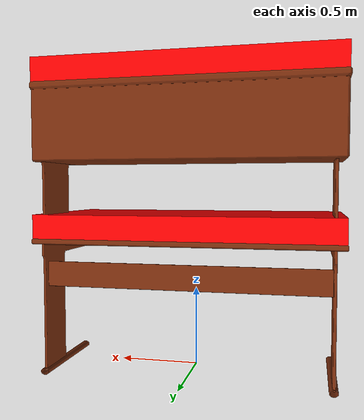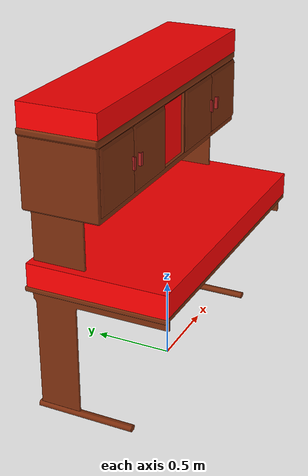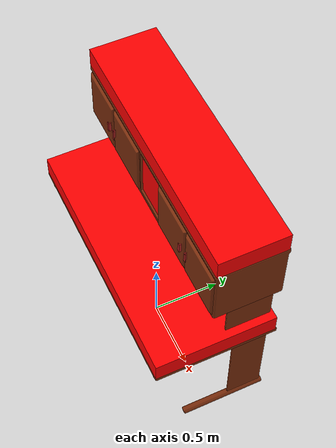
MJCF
<mujoco model="Desk_310_1">
  <compiler angle="radian" boundmass="0.01"/>

  <default>
    <default class="/">
      <default class="__VISUAL_MJT__">
        <geom contype="0" conaffinity="0"/>
      </default>
      <default class="__STRUCTURAL_MJT__">
        <geom contype="8" conaffinity="15" group="4" friction="0.9 0.9 0.001" solref="0.025" solimp="0.998 0.998"/>
      </default>
      <default class="__DYNAMIC_MJT__">
        <geom conaffinity="15" group="4" friction="0.9 0.9 0.001" solref="0.025" solimp="0.998 0.998"/>
      </default>
    </default>
  </default>

  <asset>
    <texture type="2d" name="LightWoodCounters3" file="assets/LightWoodCounters.png"/>
    <texture type="2d" name="HammeredMetal_AlbedoTransparency_2" file="assets/HammeredMetal_AlbedoTransparency.png"/>
    <material name="material_LightWoodCounters4" class="/" texture="LightWoodCounters3" rgba="0.686275 0.34902 0.156863 1" metallic="0" roughness="0.3" colormapwrap="repeat"/>
    <material name="material_LightWoodCounters3" class="/" texture="LightWoodCounters3" rgba="0.686275 0.34902 0.156863 1" metallic="0" roughness="0.3" clearcoat="0.18" clearcoatroughness="0" colormapwrap="repeat"/>
    <material name="material_HammeredMetal_AlbedoTransparency_2" class="/" texture="HammeredMetal_AlbedoTransparency_2" rgba="0.835294 0.807843 0.764706 1" metallic="1" roughness="0.13" colormapwrap="repeat"/>
    <mesh name="Desk_310_1_DeskMesh_0" class="/" content_type="model/obj" file="assets/Desk_310_1_DeskMesh/Desk_310_1_DeskMesh_0.obj"/>
    <mesh name="Desk_310_1_DeskMesh_1" class="/" content_type="model/obj" file="assets/Desk_310_1_DeskMesh/Desk_310_1_DeskMesh_1.obj"/>
    <mesh name="Desk_310_1_CabinetDoorMesh_02" class="/" content_type="model/obj" file="assets/Desk_310_1_CabinetDoorMesh_02/Desk_310_1_CabinetDoorMesh_02.obj"/>
    <mesh name="Desk_310_1_handle_3_76mm_02" class="/" content_type="model/obj" file="assets/Desk_310_1_handle_3_76mm_02/Desk_310_1_handle_3_76mm_02.obj"/>
    <mesh name="Desk_310_1_CabinetDoorMesh_03" class="/" content_type="model/obj" file="assets/Desk_310_1_CabinetDoorMesh_03/Desk_310_1_CabinetDoorMesh_03.obj"/>
    <mesh name="Desk_310_1_handle_3_76mm_03" class="/" content_type="model/obj" file="assets/Desk_310_1_handle_3_76mm_03/Desk_310_1_handle_3_76mm_03.obj"/>
    <mesh name="Desk_310_1_CabinetDoorMesh_01" class="/" content_type="model/obj" file="assets/Desk_310_1_CabinetDoorMesh_01/Desk_310_1_CabinetDoorMesh_01.obj"/>
    <mesh name="Desk_310_1_handle_3_76mm_01" class="/" content_type="model/obj" file="assets/Desk_310_1_handle_3_76mm_01/Desk_310_1_handle_3_76mm_01.obj"/>
    <mesh name="Desk_310_1_CabinetDoorMesh_04" class="/" content_type="model/obj" file="assets/Desk_310_1_CabinetDoorMesh_04/Desk_310_1_CabinetDoorMesh_04.obj"/>
    <mesh name="Desk_310_1_handle_3_76mm_04" class="/" content_type="model/obj" file="assets/Desk_310_1_handle_3_76mm_04/Desk_310_1_handle_3_76mm_04.obj"/>
  </asset>

  <worldbody>
    <!-- Initial pose: global (0,0,0.891), rotation +90° about X (deg). -->
    <body name="Desk_310_1" pos="0 0 0.891" quat="0.707107 0.707107 0 0">
      <body name="Desk_310_1_DeskMesh" pos="-0.00108 -0.884 -0.0039">
        <geom name="Desk_310_1_DeskMesh_0" class="__VISUAL_MJT__" type="mesh" density="160" material="material_LightWoodCounters4" mesh="Desk_310_1_DeskMesh_0"/>
        <geom name="Desk_310_1_DeskMesh_1" class="__VISUAL_MJT__" type="mesh" density="160" material="material_LightWoodCounters3" mesh="Desk_310_1_DeskMesh_1"/>
        <geom name="Desk_310_1_DeskMesh_PrimitiveCollider_0" class="__DYNAMIC_MJT__" size="0.92536 0.015943 0.439324" pos="-0.00108576 0.817836 0.00398952" quat="0 1 0 0" type="box" density="160" rgba="0 1 0 1"/>
        <geom name="Desk_310_1_DeskMesh_PrimitiveCollider_1" class="__DYNAMIC_MJT__" size="0.00834653 0.0365218 0.425685" pos="-0.859372 0.762071 0.00396085" quat="0 1 0 0" type="box" density="160" rgba="0 1 0 1"/>
        <geom name="Desk_310_1_DeskMesh_PrimitiveCollider_2" class="__DYNAMIC_MJT__" size="0.00834653 0.0365218 0.425685" pos="0.853628 0.762071 0.00396085" quat="0 1 0 0" type="box" density="160" rgba="0 1 0 1"/>
        <geom name="Desk_310_1_DeskMesh_PrimitiveCollider_3" class="__DYNAMIC_MJT__" size="0.86669 0.0750152 0.00755744" pos="-0.00108576 0.613748 -0.365768" quat="0 1 0 0" type="box" density="160" rgba="0 1 0 1"/>
        <geom name="Desk_310_1_DeskMesh_PrimitiveCollider_4" class="__DYNAMIC_MJT__" size="0.00834653 0.375323 0.128345" pos="-0.859372 0.396007 -0.276575" quat="0 1 0 0" type="box" density="160" rgba="0 1 0 1"/>
        <geom name="Desk_310_1_DeskMesh_PrimitiveCollider_5" class="__DYNAMIC_MJT__" size="0.00834653 0.375323 0.128345" pos="0.854628 0.396007 -0.276575" quat="0 1 0 0" type="box" density="160" rgba="0 1 0 1"/>
        <geom name="Desk_310_1_DeskMesh_PrimitiveCollider_6" class="__DYNAMIC_MJT__" size="0.025314 0.0193057 0.307872" pos="-0.857076 0.0159189 -0.109958" quat="0 1 0 0" type="box" density="160" rgba="0 1 0 1"/>
        <geom name="Desk_310_1_DeskMesh_PrimitiveCollider_7" class="__DYNAMIC_MJT__" size="0.025314 0.0193057 0.307872" pos="0.857524 0.015919 -0.109958" quat="0 1 0 0" type="box" density="160" rgba="0 1 0 1"/>
        <geom name="Desk_310_1_DeskMesh_PrimitiveCollider_8" class="__DYNAMIC_MJT__" size="0.00834653 0.237211 0.167197" pos="-0.859372 1.06517 -0.237723" quat="0 1 0 0" type="box" density="160" rgba="0 1 0 1"/>
        <geom name="Desk_310_1_DeskMesh_PrimitiveCollider_9" class="__DYNAMIC_MJT__" size="0.00834653 0.237211 0.167197" pos="0.854628 1.06517 -0.237723" quat="0 1 0 0" type="box" density="160" rgba="0 1 0 1"/>
        <geom name="Desk_310_1_DeskMesh_PrimitiveCollider_10" class="__DYNAMIC_MJT__" size="0.92536 0.0238619 0.245888" pos="-0.00108576 1.31652 -0.189447" quat="0 1 0 0" type="box" density="160" rgba="0 1 0 1"/>
        <geom name="Desk_310_1_DeskMesh_PrimitiveCollider_11" class="__DYNAMIC_MJT__" size="0.92536 0.0238619 0.245888" pos="-0.00108576 1.74752 -0.189447" quat="0 1 0 0" type="box" density="160" rgba="0 1 0 1"/>
        <geom name="Desk_310_1_DeskMesh_PrimitiveCollider_12" class="__DYNAMIC_MJT__" size="0.92536 0.199889 0.0344643" pos="-0.00108576 1.53272 -0.40087" quat="0 1 0 0" type="box" density="160" rgba="0 1 0 1"/>
        <geom name="Desk_310_1_DeskMesh_PrimitiveCollider_13" class="__DYNAMIC_MJT__" size="0.0108625 0.199889 0.242153" pos="-0.909986 1.53272 -0.187739" quat="0 1 0 0" type="box" density="160" rgba="0 1 0 1"/>
        <geom name="Desk_310_1_DeskMesh_PrimitiveCollider_14" class="__DYNAMIC_MJT__" size="0.00808348 0.199889 0.242153" pos="-0.534986 1.53272 -0.187739" quat="0 1 0 0" type="box" density="160" rgba="0 1 0 1"/>
        <geom name="Desk_310_1_DeskMesh_PrimitiveCollider_15" class="__DYNAMIC_MJT__" size="0.00808348 0.199889 0.242153" pos="-0.142986 1.53272 -0.187739" quat="0 1 0 0" type="box" density="160" rgba="0 1 0 1"/>
        <geom name="Desk_310_1_DeskMesh_PrimitiveCollider_16" class="__DYNAMIC_MJT__" size="0.00958241 0.199889 0.242153" pos="0.142922 1.53272 -0.187739" quat="0 1 0 0" type="box" density="160" rgba="0 1 0 1"/>
        <geom name="Desk_310_1_DeskMesh_PrimitiveCollider_17" class="__DYNAMIC_MJT__" size="0.00885481 0.199889 0.242153" pos="0.53385 1.53272 -0.187739" quat="0 1 0 0" type="box" density="160" rgba="0 1 0 1"/>
        <geom name="Desk_310_1_DeskMesh_PrimitiveCollider_18" class="__DYNAMIC_MJT__" size="0.00885481 0.199889 0.242153" pos="0.90835 1.53272 -0.187739" quat="0 1 0 0" type="box" density="160" rgba="0 1 0 1"/>
        <site name="Desk_310_1_DeskMesh_Receptacle_0" class="/" pos="0.00113094 0.906268 0.00632234" quat="0 1 0 0" size="0.921527 0.0732682 0.432285" type="box" rgba="1 0 0 1"/>
        <site name="Desk_310_1_DeskMesh_Receptacle_1" class="/" pos="0.00113082 1.84567 -0.185835" quat="0 1 0 0" size="0.921527 0.0732682 0.239933" type="box" rgba="1 0 0 1"/>
        <site name="Desk_310_1_DeskMesh_Receptacle_2" class="/" pos="-0.00473142 1.53191 -0.159239" quat="0 1 0 0" size="0.131429 0.186728 0.196312" type="box" rgba="1 0 0 1"/>
        <site name="Desk_310_1_DeskMesh_Receptacle_3" class="/" pos="-0.344069 1.53117 -0.156457" quat="0 1 0 0" size="0.183548 0.184952 0.204138" type="box" rgba="1 0 0 1"/>
        <site name="Desk_310_1_DeskMesh_Receptacle_4" class="/" pos="0.350116 1.53021 -0.155319" quat="0 1 0 0" size="0.174296 0.185916 0.203269" type="box" rgba="1 0 0 1"/>
        <site name="Desk_310_1_DeskMesh_Receptacle_5" class="/" pos="-0.728237 1.53187 -0.15524" quat="0 1 0 0" size="0.176412 0.184925 0.204133" type="box" rgba="1 0 0 1"/>
        <site name="Desk_310_1_DeskMesh_Receptacle_6" class="/" pos="0.719028 1.53117 -0.155829" quat="0 1 0 0" size="0.177572 0.185904 0.204653" type="box" rgba="1 0 0 1"/>
        <body name="Desk_310_1_CabinetDoorMesh_02" pos="-0.148602 1.53117 0.0545616">
          <joint name="Desk_310_1_joint" class="/" pos="0 0 0" axis="0 -1 0" range="-1.5708 0" damping="0.1" frictionloss="1.2"/>
          <geom name="Desk_310_1_CabinetDoorMesh_02" class="__VISUAL_MJT__" type="mesh" material="material_LightWoodCounters3" mesh="Desk_310_1_CabinetDoorMesh_02"/>
          <geom name="Desk_310_1_CabinetDoorMesh_02_PrimitiveCollider_0" class="__DYNAMIC_MJT__" size="0.190594 0.19353 0.011343" pos="-0.190594 0 0.00311947" quat="0 1 0 0" type="box" rgba="0 1 0 1"/>
          <body name="Desk_310_1_handle_3_76mm_02" pos="-0.353 0 0" quat="0.707107 0 0 -0.707107">
            <geom name="Desk_310_1_handle_3_76mm_02" class="__VISUAL_MJT__" type="mesh" material="material_HammeredMetal_AlbedoTransparency_2" mesh="Desk_310_1_handle_3_76mm_02"/>
            <geom name="Desk_310_1_handle_3_76mm_02_PrimitiveCollider_0" class="__DYNAMIC_MJT__" size="0.0382538 0.00355491 0.0164315" pos="0 0 0.01629" quat="0 1 0 0" type="box" rgba="0 1 0 1"/>
            <geom name="Desk_310_1_handle_3_76mm_02_PrimitiveCollider_1" class="__DYNAMIC_MJT__" size="0.0382538 0.00775982 0.00192273" pos="-1.34527e-09 0.0112849 0.0307988" quat="0 1 0 0" type="box" rgba="0 1 0 1"/>
          </body>
        </body>
        <body name="Desk_310_1_CabinetDoorMesh_03" pos="0.903774 1.53117 0.0529699">
          <joint name="Desk_310_1_CabinetDoorMesh_03__1" class="/" pos="0 0 0" axis="0 -1 0" range="-1.5708 0" damping="0.1" frictionloss="1.2"/>
          <geom name="Desk_310_1_CabinetDoorMesh_03" class="__VISUAL_MJT__" type="mesh" material="material_LightWoodCounters3" mesh="Desk_310_1_CabinetDoorMesh_03"/>
          <geom name="Desk_310_1_CabinetDoorMesh_03_PrimitiveCollider_0" class="__DYNAMIC_MJT__" size="0.183128 0.201537 0.0101119" pos="-0.183128 0 0.00339785" quat="0 1 0 0" type="box" rgba="0 1 0 1"/>
          <body name="Desk_310_1_handle_3_76mm_03" pos="-0.336 0 0" quat="0.707107 0 0 -0.707107">
            <geom name="Desk_310_1_handle_3_76mm_03" class="__VISUAL_MJT__" type="mesh" material="material_HammeredMetal_AlbedoTransparency_2" mesh="Desk_310_1_handle_3_76mm_03"/>
            <geom name="Desk_310_1_handle_3_76mm_03_PrimitiveCollider_0" class="__DYNAMIC_MJT__" size="0.0382538 0.00355491 0.0164315" pos="0 0 0.01629" quat="0 1 0 0" type="box" rgba="0 1 0 1"/>
            <geom name="Desk_310_1_handle_3_76mm_03_PrimitiveCollider_1" class="__DYNAMIC_MJT__" size="0.0382538 0.00775982 0.00192273" pos="-1.34526e-09 0.0112849 0.0307988" quat="0 1 0 0" type="box" rgba="0 1 0 1"/>
          </body>
        </body>
        <body name="Desk_310_1_CabinetDoorMesh_01" pos="-0.903774 1.53117 0.0545616">
          <joint name="Desk_310_1_CabinetDoorMesh_01__1" class="/" pos="0 0 0" axis="0 -1 0" range="0 1.5708" damping="0.1" frictionloss="1.2"/>
          <geom name="Desk_310_1_CabinetDoorMesh_01" class="__VISUAL_MJT__" type="mesh" material="material_LightWoodCounters3" mesh="Desk_310_1_CabinetDoorMesh_01"/>
          <geom name="Desk_310_1_CabinetDoorMesh_01_PrimitiveCollider_0" class="__DYNAMIC_MJT__" size="0.182799 0.192332 0.00932789" pos="0.182799 -0.000666738 0.00425625" quat="0 1 0 0" type="box" rgba="0 1 0 1"/>
          <body name="Desk_310_1_handle_3_76mm_01" pos="0.335 0 0" quat="0.707107 0 0 0.707107">
            <geom name="Desk_310_1_handle_3_76mm_01" class="__VISUAL_MJT__" type="mesh" material="material_HammeredMetal_AlbedoTransparency_2" mesh="Desk_310_1_handle_3_76mm_01"/>
            <geom name="Desk_310_1_handle_3_76mm_01_PrimitiveCollider_0" class="__DYNAMIC_MJT__" size="0.0382538 0.00355491 0.0164315" pos="0 0 0.01629" quat="0 1 0 0" type="box" rgba="0 1 0 1"/>
            <geom name="Desk_310_1_handle_3_76mm_01_PrimitiveCollider_1" class="__DYNAMIC_MJT__" size="0.0382538 0.00775982 0.00192273" pos="-6.72635e-10 0.0112849 0.0307988" quat="0 1 0 0" type="box" rgba="0 1 0 1"/>
          </body>
        </body>
        <body name="Desk_310_1_CabinetDoorMesh_04" pos="0.148602 1.53117 0.0529699">
          <joint name="Desk_310_1_CabinetDoorMesh_04__1" class="/" pos="0 0 0" axis="0 -1 0" range="0 1.5708" damping="0.1" frictionloss="1.2"/>
          <geom name="Desk_310_1_CabinetDoorMesh_04" class="__VISUAL_MJT__" type="mesh" material="material_LightWoodCounters3" mesh="Desk_310_1_CabinetDoorMesh_04"/>
          <geom name="Desk_310_1_CabinetDoorMesh_04_PrimitiveCollider_0" class="__DYNAMIC_MJT__" size="0.192069 0.18505 0.0114916" pos="0.192069 0 0.00329609" quat="0 1 0 0" type="box" rgba="0 1 0 1"/>
          <body name="Desk_310_1_handle_3_76mm_04" pos="0.35 0 0" quat="0.707107 0 0 0.707107">
            <geom name="Desk_310_1_handle_3_76mm_04" class="__VISUAL_MJT__" type="mesh" material="material_HammeredMetal_AlbedoTransparency_2" mesh="Desk_310_1_handle_3_76mm_04"/>
            <geom name="Desk_310_1_handle_3_76mm_04_PrimitiveCollider_0" class="__DYNAMIC_MJT__" size="0.0382538 0.00355491 0.0164315" pos="0 0 0.01629" quat="0 1 0 0" type="box" rgba="0 1 0 1"/>
            <geom name="Desk_310_1_handle_3_76mm_04_PrimitiveCollider_1" class="__DYNAMIC_MJT__" size="0.0382538 0.00775982 0.00192273" pos="-6.72634e-10 0.0112849 0.0307988" quat="0 1 0 0" type="box" rgba="0 1 0 1"/>
          </body>
        </body>
      </body>
    </body>
  </worldbody>

  <contact>
    <exclude name="//unnamed_contact_0" body1="Desk_310_1_DeskMesh" body2="Desk_310_1_CabinetDoorMesh_02"/>
    <exclude body1="Desk_310_1_DeskMesh" body2="Desk_310_1_CabinetDoorMesh_02"/>
    <exclude body1="Desk_310_1_DeskMesh" body2="Desk_310_1_handle_3_76mm_02"/>
    <exclude name="//unnamed_contact_1" body1="Desk_310_1_DeskMesh" body2="Desk_310_1_CabinetDoorMesh_03"/>
    <exclude body1="Desk_310_1_DeskMesh" body2="Desk_310_1_CabinetDoorMesh_03"/>
    <exclude body1="Desk_310_1_DeskMesh" body2="Desk_310_1_handle_3_76mm_03"/>
    <exclude name="//unnamed_contact_2" body1="Desk_310_1_DeskMesh" body2="Desk_310_1_CabinetDoorMesh_01"/>
    <exclude body1="Desk_310_1_DeskMesh" body2="Desk_310_1_CabinetDoorMesh_01"/>
    <exclude body1="Desk_310_1_DeskMesh" body2="Desk_310_1_handle_3_76mm_01"/>
    <exclude name="//unnamed_contact_3" body1="Desk_310_1_DeskMesh" body2="Desk_310_1_CabinetDoorMesh_04"/>
    <exclude body1="Desk_310_1_DeskMesh" body2="Desk_310_1_CabinetDoorMesh_04"/>
    <exclude body1="Desk_310_1_DeskMesh" body2="Desk_310_1_handle_3_76mm_04"/>
    <exclude body1="Desk_310_1_CabinetDoorMesh_02" body2="Desk_310_1_handle_3_76mm_02"/>
    <exclude body1="Desk_310_1_CabinetDoorMesh_02" body2="Desk_310_1_CabinetDoorMesh_03"/>
    <exclude body1="Desk_310_1_CabinetDoorMesh_02" body2="Desk_310_1_handle_3_76mm_03"/>
    <exclude body1="Desk_310_1_CabinetDoorMesh_02" body2="Desk_310_1_CabinetDoorMesh_01"/>
    <exclude body1="Desk_310_1_CabinetDoorMesh_02" body2="Desk_310_1_handle_3_76mm_01"/>
    <exclude body1="Desk_310_1_CabinetDoorMesh_02" body2="Desk_310_1_CabinetDoorMesh_04"/>
    <exclude body1="Desk_310_1_CabinetDoorMesh_02" body2="Desk_310_1_handle_3_76mm_04"/>
    <exclude body1="Desk_310_1_handle_3_76mm_02" body2="Desk_310_1_CabinetDoorMesh_03"/>
    <exclude body1="Desk_310_1_handle_3_76mm_02" body2="Desk_310_1_handle_3_76mm_03"/>
    <exclude body1="Desk_310_1_handle_3_76mm_02" body2="Desk_310_1_CabinetDoorMesh_01"/>
    <exclude body1="Desk_310_1_handle_3_76mm_02" body2="Desk_310_1_handle_3_76mm_01"/>
    <exclude body1="Desk_310_1_handle_3_76mm_02" body2="Desk_310_1_CabinetDoorMesh_04"/>
    <exclude body1="Desk_310_1_handle_3_76mm_02" body2="Desk_310_1_handle_3_76mm_04"/>
    <exclude body1="Desk_310_1_CabinetDoorMesh_03" body2="Desk_310_1_handle_3_76mm_03"/>
    <exclude body1="Desk_310_1_CabinetDoorMesh_03" body2="Desk_310_1_CabinetDoorMesh_01"/>
    <exclude body1="Desk_310_1_CabinetDoorMesh_03" body2="Desk_310_1_handle_3_76mm_01"/>
    <exclude body1="Desk_310_1_CabinetDoorMesh_03" body2="Desk_310_1_CabinetDoorMesh_04"/>
    <exclude body1="Desk_310_1_CabinetDoorMesh_03" body2="Desk_310_1_handle_3_76mm_04"/>
    <exclude body1="Desk_310_1_handle_3_76mm_03" body2="Desk_310_1_CabinetDoorMesh_01"/>
    <exclude body1="Desk_310_1_handle_3_76mm_03" body2="Desk_310_1_handle_3_76mm_01"/>
    <exclude body1="Desk_310_1_handle_3_76mm_03" body2="Desk_310_1_CabinetDoorMesh_04"/>
    <exclude body1="Desk_310_1_handle_3_76mm_03" body2="Desk_310_1_handle_3_76mm_04"/>
    <exclude body1="Desk_310_1_CabinetDoorMesh_01" body2="Desk_310_1_handle_3_76mm_01"/>
    <exclude body1="Desk_310_1_CabinetDoorMesh_01" body2="Desk_310_1_CabinetDoorMesh_04"/>
    <exclude body1="Desk_310_1_CabinetDoorMesh_01" body2="Desk_310_1_handle_3_76mm_04"/>
    <exclude body1="Desk_310_1_handle_3_76mm_01" body2="Desk_310_1_CabinetDoorMesh_04"/>
    <exclude body1="Desk_310_1_handle_3_76mm_01" body2="Desk_310_1_handle_3_76mm_04"/>
    <exclude body1="Desk_310_1_CabinetDoorMesh_04" body2="Desk_310_1_handle_3_76mm_04"/>
  </contact>
</mujoco>
